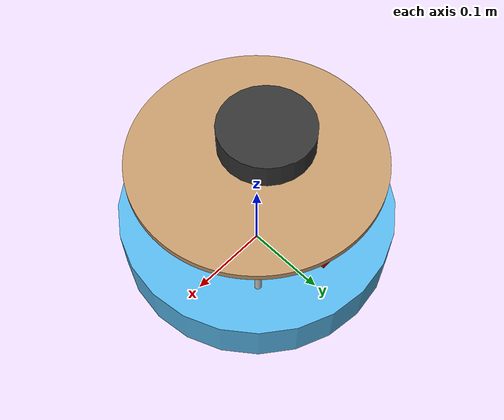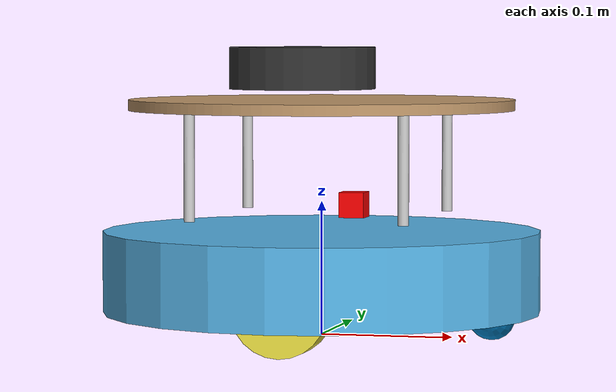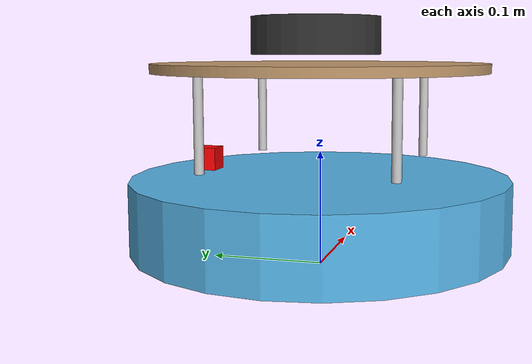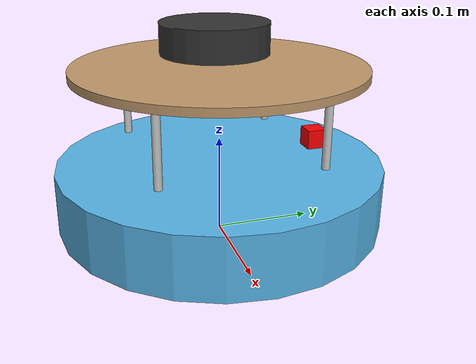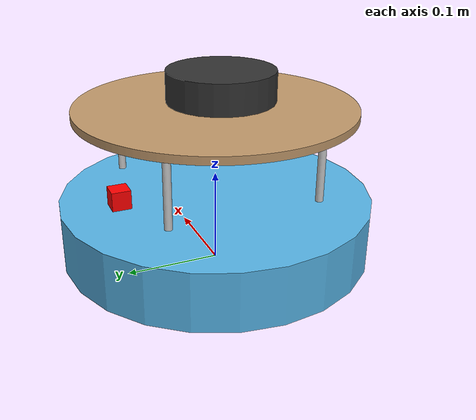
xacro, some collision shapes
<?xml version="1.0"?>
<robot xmlns:xacro="http://ros.org/wiki/xacro" name="lubobot_description">
        <material name="dark_gray">
          <color rgba="0.2 0.2 0.2 1"/>
        </material>
        <material name="wood">
          <color rgba="0.76 0.6 0.42 1"/>
        </material>
        <material name="metal">
          <color rgba="0.8 0.8 0.8 1"/>
        </material>

        <xacro:include filename="$(find create_description)/urdf/create_2.urdf.xacro"/>
        <xacro:include filename="$(find lubobot)/urdf/assembly_mount.urdf.xacro"/>
        <xacro:include filename="$(find lubobot)/urdf/imu.urdf.xacro"/>
        <xacro:include filename="$(find lubobot)/urdf/lds_lidar.urdf.xacro"/>

        <xacro:assembly_mount parent="base_link"/>

        <xacro:lds_lidar xyz="0 0 0.19" rpy="0 0 3.1415" parent="base_link"/>

        <xacro:imu_sensor xyz="0 0.105 0.074" rpy="0 0 0" parent="base_link" />

</robot>

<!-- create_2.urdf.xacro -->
<robot name="create_2" xmlns:xacro="http://ros.org/wiki/xacro">
  <xacro:include filename="$(find lubobot)/urdf/create_base.urdf.xacro" />
  <xacro:create_base wheel_separation="0.235" base_diameter="0.3485">
    <mesh filename="package://lubobot/meshes/create_2.dae" />
  </xacro:create_base>
</robot>

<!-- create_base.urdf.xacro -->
<robot xmlns:xacro="http://ros.org/wiki/xacro">
  <xacro:property name="PI" value="3.1415926535897931" />

  <xacro:macro name="create_wheel" params="prefix y_offset wheel_radius wheel_width">
    <link name="${prefix}_wheel_link">
      <inertial>
        <origin xyz="0 0 0" />
        <mass value="0.01" />
        <inertia ixx="0.001" ixy="0.0" ixz="0.0" iyy="0.001" iyz="0.0" izz="0.001" />
      </inertial>

      <visual>
        <origin xyz="0 0 0" rpy="0 ${PI/2} ${PI/2}" />
        <geometry>
          <cylinder radius="${wheel_radius}" length="${wheel_width}" />
        </geometry>
      </visual>

      <collision>
        <origin xyz="0 0 0" rpy="0 ${PI/2} ${PI/2}" />
        <geometry>
          <cylinder radius="${wheel_radius}" length="${wheel_width}" />
        </geometry>
      </collision>
    </link>

    <joint name="${prefix}_wheel_joint" type="continuous">
      <origin xyz="0 ${y_offset} 0.015" rpy="0 0 0" />
      <parent link="base_link" />
      <child link="${prefix}_wheel_link" />
      <axis xyz="0 1 0" />
    </joint>
  </xacro:macro>

  <xacro:macro name="create_base" params="diffdrive_update_rate:=40 wheel_separation wheel_radius:=0.036 wheel_width:=0.024 wheel_torque:=1.0 wheel_accel:=1.8 mass_kg:=3.5 base_diameter *mesh">
    <link name="base_footprint">
      <visual>
        <origin xyz="0 0 0" rpy="0 0 0" />
        <geometry>
          <box size="0.001 0.001 0.001" />
        </geometry>
        <material name="Green" />
      </visual>

      <collision>
        <origin xyz="0 0 0.017" rpy="0 0 0" />
        <geometry>
          <box size="0.001 0.001 0.001" />
        </geometry>
      </collision>
    </link>

    <link name="base_link">
      <inertial>
        <mass value="2" />
        <origin xyz="0 0 0.0" />
        <inertia ixx="0.01" ixy="0.0" ixz="0.0" iyy="0.01" iyz="0.0" izz="0.5" />
      </inertial>

      <visual>
        <origin xyz=" 0 0 0.0308" rpy="0 0 0" />
        <geometry>
          <xacro:insert_block name="mesh" />
        </geometry>
      </visual>

      <collision>
        <origin xyz="0.0 0.0 0.0308" rpy="0 0 0" />
        <geometry>
          <cylinder length="0.0611632" radius="0.16495" />
        </geometry>
      </collision>
    </link>

    <joint name="base_footprint_joint" type="fixed">
      <origin xyz="0 0 0.017" rpy="0 0 0" />
      <parent link="base_footprint" />
      <child link="base_link" />
    </joint>

    <xacro:create_wheel prefix="left" y_offset="${wheel_separation / 2}" wheel_radius="${wheel_radius}" wheel_width="${wheel_width}"/>
    <xacro:create_wheel prefix="right" y_offset="${wheel_separation / -2}" wheel_radius="${wheel_radius}" wheel_width="${wheel_width}"/>

    <link name="front_wheel_link">
      <inertial>
        <origin xyz="0 0 0" />
        <mass value="0.01" />
        <inertia ixx="0.001" ixy="0.0" ixz="0.0" iyy="0.001" iyz="0.0" izz="0.001" />
      </inertial>

      <visual>
        <origin xyz="0 0 0" rpy="0 ${PI/2} ${PI/2}" />
        <geometry>
          <sphere radius="0.018" />
        </geometry>
      </visual>

      <collision>
        <origin xyz="0 0 0" rpy="0 ${PI/2} ${PI/2}" />
        <geometry>
          <sphere radius="0.018" />
        </geometry>
      </collision>
    </link>

    <!-- fixed because there's no transmission -->
    <joint name="front_castor_joint" type="fixed">
      <origin xyz="0.13 0 0.0" rpy="0 0 0" />
      <parent link="base_link" />
      <child link="front_wheel_link" />
      <axis xyz="0 1 0" />
    </joint>

  </xacro:macro>
</robot>

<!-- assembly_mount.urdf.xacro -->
<robot name="assembly_mount"
  xmlns:xacro="http://ros.org/wiki/xacro">
  <!-- Heavily based on: https://github.com/turtlebot/turtlebot/blob/5a97fdd2661354a866ee41238e2197244c220840/turtlebot_description/urdf/stacks/hexagons.urdf.xacro -->

  <xacro:macro name="stack_bottom_pole" params="parent number x_loc y_loc z_loc">
    <joint name="pole_bottom_${number}_joint" type="fixed">
      <origin xyz="${x_loc} ${y_loc} ${z_loc}" rpy="0 0 0"/>
      <parent link="${parent}"/>
      <child link="pole_bottom_${number}_link"/>
    </joint>
    <link name="pole_bottom_${number}_link">
      <visual>
        <origin xyz="0 0 0" rpy="0 0 0"/>
        <geometry>
          <mesh filename="package://lubobot/meshes/pole_80mm.stl" scale="0.001 0.001 0.001"/>
        </geometry>
        <material name="metal"/>
      </visual>
      <collision>
        <origin xyz="0 0 0" rpy="0 0 0"/>
        <geometry>
          <mesh filename="package://lubobot/meshes/pole_80mm.stl" scale="0.001 0.001 0.001"/>
        </geometry>
      </collision>
      <inertial>
        <mass value="0.008"/>
        <origin xyz="0 0 0" rpy="0 0 0"/>
        <inertia ixx="0.000001686" ixy="0.0" ixz="0.0" iyy="0.000001686" iyz="0.0" izz="0.000000144"/>
      </inertial>
    </link>
  </xacro:macro>

  <xacro:macro name="assembly_mount" params="parent">
    <xacro:stack_bottom_pole parent="${parent}" number="0" x_loc= "0.08" y_loc= "0.08" z_loc="0.112"/>
    <xacro:stack_bottom_pole parent="${parent}" number="1" x_loc= "0.08" y_loc= "-0.08" z_loc="0.112"/>
    <xacro:stack_bottom_pole parent="${parent}" number="2" x_loc= "-0.08" y_loc= "0.08" z_loc="0.112"/>
    <xacro:stack_bottom_pole parent="${parent}" number="3" x_loc= "-0.08" y_loc= "-0.08" z_loc="0.112"/>

    <joint name="plate_bottom_joint" type="fixed">
      <origin xyz="0 0 0.156" rpy="0 0 0"/>
      <parent link="${parent}"/>
      <child link="plate_bottom_link"/>
    </joint>
    <link name="plate_bottom_link">
      <visual>
        <origin xyz="0 0 0" rpy="0 0 0"/>
        <geometry>
          <mesh filename="package://lubobot/meshes/bottom_plate_290mm.stl" scale="0.001 0.001 0.001"/>
        </geometry>
        <material name="wood"/>
      </visual>
      <collision>
        <origin xyz="0 0 0" rpy="0 0 0"/>
        <geometry>
          <mesh filename="package://lubobot/meshes/bottom_plate_290mm.stl" scale="0.001 0.001 0.001"/>
        </geometry>
      </collision>
      <inertial>
        <mass value="0.520" />
        <origin xyz="0 0 0" />
        <inertia ixx="0.003328" ixy="0.0" ixz="0.0" iyy="0.003328" iyz="0.0" izz="0.006656" />
      </inertial>
    </link>
  </xacro:macro>

</robot>

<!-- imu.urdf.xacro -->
<robot name="imu"
    xmlns:xacro="http://ros.org/wiki/xacro">
    <xacro:macro name="imu_sensor" params="xyz rpy parent">
        <material name="red">
            <color rgba="1 0 0 1"/>
        </material>

        <joint name="imu_sensor_joint" type="fixed">
            <axis xyz="0 0 1" />
            <origin xyz="${xyz}" rpy="${rpy}"/>
            <parent link="${parent}"/>
            <child link="imu_sensor_link"/>
        </joint>

        <link name="imu_sensor_link">
            <collision>
                <origin xyz="0 0 0" rpy="0 0 0"/>
                <geometry>
                    <box size="0.02 0.02 0.02"/>
                </geometry>
            </collision>
            <visual>
                <origin xyz="0 0 0" rpy="0 0 0"/>
                <geometry>
                    <box size="0.02 0.02 0.02"/>
                </geometry>
                <material name="red"/>
            </visual>
            <inertial>
                <mass value="0.001" />
                <origin xyz="0 0 0" rpy="0 0 0"/>
                <inertia ixx="0.00000015" ixy="0" ixz="0" iyy="0.00000015" iyz="0" izz="0.00000015" />
            </inertial>
        </link>

    </xacro:macro>
</robot>

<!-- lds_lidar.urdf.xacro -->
<robot name="imu"
    xmlns:xacro="http://ros.org/wiki/xacro">
    <xacro:macro name="lds_lidar" params="xyz rpy parent">
      <material name="dark_gray">
        <color rgba="0.2 0.2 0.2 1"/>
      </material>

    <joint name="lidar_joint" type="fixed">
      <origin xyz="${xyz}" rpy="${rpy}"/>
      <parent link="${parent}"/>
      <child link="lidar_link" />
    </joint>

      <link name="lidar_link">
        <visual>
          <origin xyz="0 0 0" rpy="0 0 0"/>
          <geometry>
            <mesh filename="package://lubobot/meshes/lds_lidar.stl" scale="0.001 0.001 0.001"/>
          </geometry>
          <material name="dark_gray"/>
        </visual>

        <collision>
          <origin xyz="0.015 0 -0.0065" rpy="0 0 0"/>
          <geometry>
            <cylinder length="0.0315" radius="0.055"/>
          </geometry>
        </collision>

        <inertial>
          <mass value="0.114" />
          <origin xyz="0 0 0" />
          <inertia ixx="0.001" ixy="0.0" ixz="0.0"
                  iyy="0.001" iyz="0.0"
                  izz="0.001" />
        </inertial>
      </link>

    </xacro:macro>
</robot>
